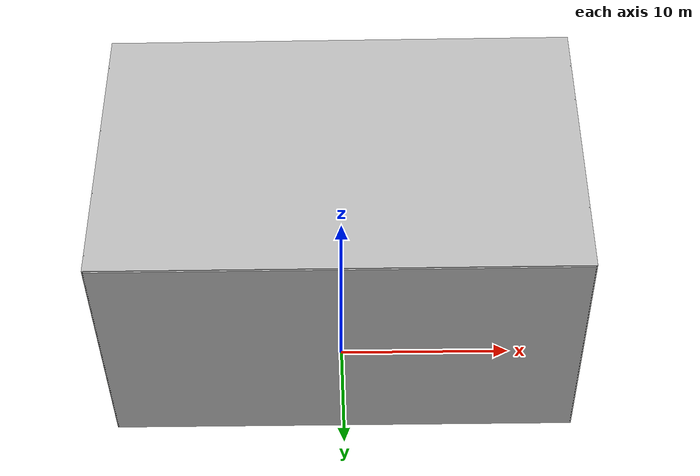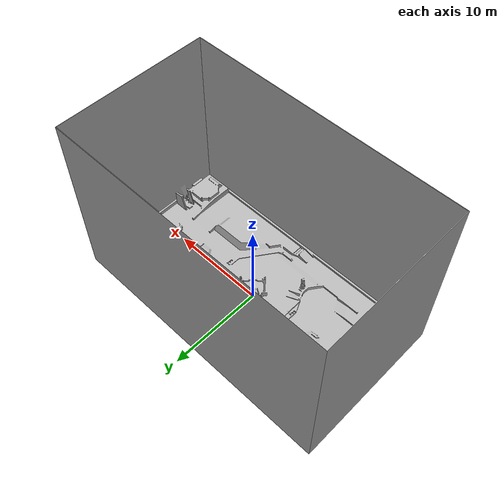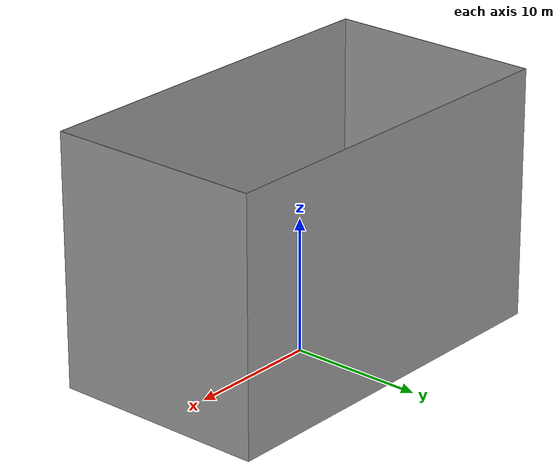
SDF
<?xml version='1.0'?>
<!-- RMUC2025 全场网格模型（来源：SMBU-PolarBear rmu_gazebo_simulator）
     原始 link pose 为 "14.5 8 0.2 0 0 0"，其 x/y 偏移用于配合他们
     自己的出生点配置；网格实际已按场地中心建模（x ±14.58, y ±8.08，
     地板 z=-0.2），故此处只保留 z=0.2 抬升，使地板落在 z=0。 -->
<sdf version='1.6'>
  <model name='rmuc_2025'>
    <static>true</static>
    <link name='body'>
      <pose frame=''>0 0 0.2 0 0 0</pose>
      <self_collide>0</self_collide>
      <kinematic>0</kinematic>
      <gravity>1</gravity>
      <visual name='visual'>
        <geometry>
          <mesh>
            <uri>model://rmuc_2025/meshes/rmuc_2025.stl</uri>
            <scale>1 1 1</scale>
          </mesh>
        </geometry>
        <material>
          <ambient>0.3 0.3 0.3 1</ambient>
          <diffuse>0.7 0.7 0.7 1</diffuse>
          <specular>0.01 0.01 0.01 1</specular>
        </material>
      </visual>
      <collision name='collision'>
        <geometry>
          <mesh>
            <uri>model://rmuc_2025/meshes/rmuc_2025.stl</uri>
            <scale>1 1 1</scale>
          </mesh>
        </geometry>
      </collision>
    </link>
  </model>
</sdf>
